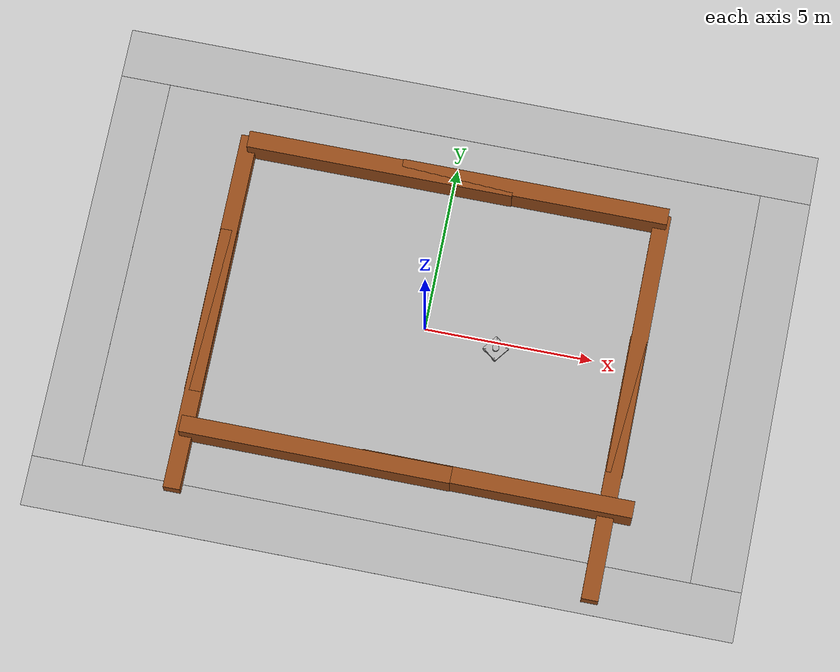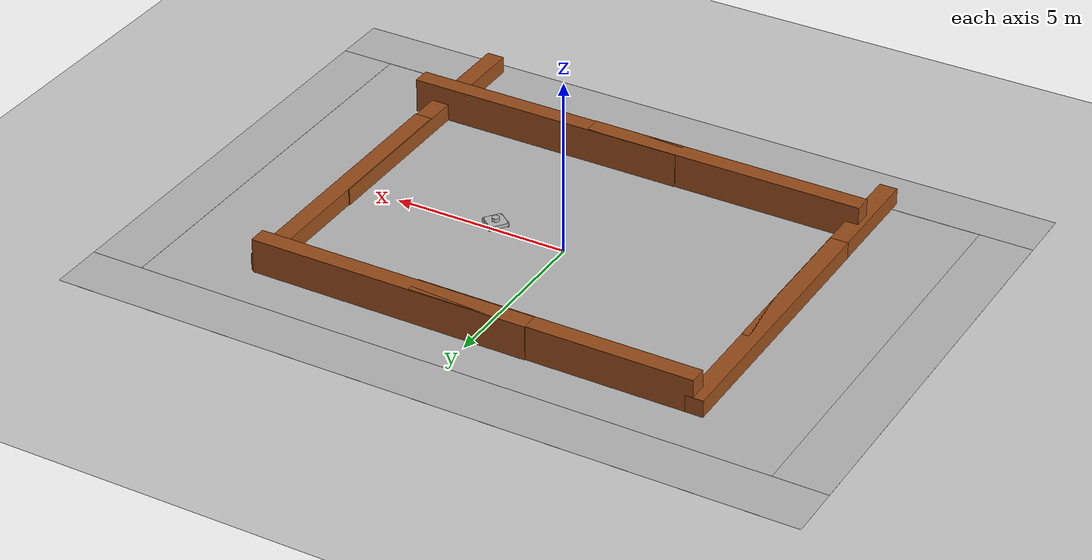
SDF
<sdf version="1.7">
 <world name="RoboCon25">
  <scene><ambient>0.4 0.4 0.4 1</ambient><background>0.7 0.7 0.7 1</background><shadows>0</shadows></scene>
  <spherical_coordinates>
   <surface_model>EARTH_WGS84</surface_model>
   <latitude_deg>0</latitude_deg>
   <longitude_deg>0</longitude_deg>
   <elevation>0</elevation>
   <heading_deg>0</heading_deg>
  </spherical_coordinates>
  <light name="sun" type="directional">
   <cast_shadows>0</cast_shadows>
   <pose>0 0 10 0 -0 0</pose>
   <diffuse>0.8 0.8 0.8 1</diffuse>
   <specular>0.2 0.2 0.2 1</specular>
   <attenuation>
    <range>1000</range>
    <constant>0.9</constant>
    <linear>0.01</linear>
    <quadratic>0.001</quadratic>
   </attenuation>
   <direction>-0.5 0.1 -0.9</direction>
   <spot><inner_angle>0</inner_angle><outer_angle>0</outer_angle><falloff>0</falloff></spot>
  </light>
  <physics type="ode">
   <max_step_size>0.015</max_step_size>
   <real_time_update_rate>67</real_time_update_rate>
   <real_time_factor>1</real_time_factor>
  </physics>
  <model name="ground_plane">
   <static>1</static>
   <link name="link">
    <collision name="collision">
     <geometry><plane><normal>0 0 1</normal><size>100 100</size></plane></geometry>
     <surface><friction><ode><mu>100</mu><mu2>50</mu2></ode></friction></surface>
    </collision>
    <visual name="visual">
     <cast_shadows>0</cast_shadows>
     <geometry><plane><normal>0 0 1</normal><size>100 100</size></plane></geometry>
     <material>
      <script><uri>file://media/materials/scripts/gazebo.material</uri><name>Gazebo/Grey</name></script>
     </material>
    </visual>
    <velocity_decay><linear>0</linear><angular>0</angular></velocity_decay>
   </link>
  </model>
  <model name="field">
   <static>1</static>
   <link name="chassis">
    <pose>0 0 0.01 0 -0 0</pose>
    <collision name="collision">
     <geometry><plane><normal>0 0 1</normal><size>18 12</size></plane></geometry>
     <surface><friction><ode><mu>100</mu><mu2>50</mu2></ode></friction></surface>
    </collision>
    <visual name="carpet">
     <cast_shadows>0</cast_shadows>
     <geometry><plane><normal>0 0 1</normal><size>18 12</size></plane></geometry>
     <material>
      <script>
       <uri>file://materials/scripts/</uri>
       <uri>file://materials/textures/</uri>
       <name>RoboCon/Carpet</name>
      </script>
     </material>
    </visual>
    <visual name="base1">
     <pose>0 6.75 0.01 0 -0 0</pose>
     <cast_shadows>0</cast_shadows>
     <geometry><plane><normal>0 0 1</normal><size>21 1.5</size></plane></geometry>
     <material>
      <script>
       <uri>file://materials/scripts/</uri>
       <uri>file://materials/textures/</uri>
       <name>RoboCon/FieldBorder</name>
      </script>
     </material>
    </visual>
    <visual name="base2">
     <pose>0 -6.75 0.01 0 -0 0</pose>
     <cast_shadows>0</cast_shadows>
     <geometry><plane><normal>0 0 1</normal><size>21 1.5</size></plane></geometry>
     <material>
      <script>
       <uri>file://materials/scripts/</uri>
       <uri>file://materials/textures/</uri>
       <name>RoboCon/FieldBorder</name>
      </script>
     </material>
    </visual>
    <visual name="base3">
     <pose>9.75 0 0.01 0 -0 0</pose>
     <cast_shadows>0</cast_shadows>
     <geometry><plane><normal>0 0 1</normal><size>1.5 12</size></plane></geometry>
     <material>
      <script>
       <uri>file://materials/scripts/</uri>
       <uri>file://materials/textures/</uri>
       <name>RoboCon/FieldBorder</name>
      </script>
     </material>
    </visual>
    <visual name="base4">
     <pose>-9.75 0 0.01 0 -0 0</pose>
     <cast_shadows>0</cast_shadows>
     <geometry><plane><normal>0 0 1</normal><size>1.5 12</size></plane></geometry>
     <material>
      <script>
       <uri>file://materials/scripts/</uri>
       <uri>file://materials/textures/</uri>
       <name>RoboCon/FieldBorder</name>
      </script>
     </material>
    </visual>
   </link>
  </model>
  <gravity>0 0 -9.8</gravity>
  <magnetic_field>6e-06 2.3e-05 -4.2e-05</magnetic_field>
  <atmosphere type="adiabatic"/>
  <model name="rc_baseplate">
   <link name="base_footprint">
    <inertial>
     <mass>20</mass>
     <inertia><ixx>4.00538</ixx><ixy>0</ixy><ixz>0</ixz><iyy>4.00538</iyy><iyz>0</iyz><izz>0.51076</izz></inertia>
    </inertial>
    <collision name="base_footprint_fixed_joint_lump__base_link_collision">
     <geometry><box><size>0.53 0.532 0.1</size></box></geometry>
    </collision>
    <collision name="base_footprint_fixed_joint_lump__wheel_lb_collision_1">
     <pose>-0.25 -0.195 -0.025 3.14159 1.57079 3.14159</pose>
     <geometry><cylinder><length>0.0409</length><radius>0.077</radius></cylinder></geometry>
    </collision>
    <collision name="base_footprint_fixed_joint_lump__wheel_lf_collision_2">
     <pose>-0.25 0.195 -0.025 3.14159 1.57079 3.14159</pose>
     <geometry><cylinder><length>0.0409</length><radius>0.077</radius></cylinder></geometry>
    </collision>
    <collision name="base_footprint_fixed_joint_lump__wheel_rb_collision_3">
     <pose>0.25 -0.195 -0.025 3.14159 -1.57079 3.14159</pose>
     <geometry><cylinder><length>0.0409</length><radius>0.077</radius></cylinder></geometry>
    </collision>
    <collision name="base_footprint_fixed_joint_lump__wheel_rf_collision_4">
     <pose>0.25 0.195 -0.025 3.14159 -1.57079 3.14159</pose>
     <geometry><cylinder><length>0.0409</length><radius>0.077</radius></cylinder></geometry>
    </collision>
    <visual name="base_footprint_visual"><geometry><box><size>0.05 0.05 0.001</size></box></geometry></visual>
    <visual name="base_footprint_fixed_joint_lump__base_link_visual_1">
     <geometry><box><size>0.53 0.532 0.1</size></box></geometry>
    </visual>
    <visual name="base_footprint_fixed_joint_lump__wheel_lb_visual_2">
     <pose>-0.25 -0.195 -0.025 3.14159 1.57079 3.14159</pose>
     <geometry><cylinder><length>0.0409</length><radius>0.077</radius></cylinder></geometry>
    </visual>
    <visual name="base_footprint_fixed_joint_lump__wheel_lf_visual_3">
     <pose>-0.25 0.195 -0.025 3.14159 1.57079 3.14159</pose>
     <geometry><cylinder><length>0.0409</length><radius>0.077</radius></cylinder></geometry>
    </visual>
    <visual name="base_footprint_fixed_joint_lump__wheel_rb_visual_4">
     <pose>0.25 -0.195 -0.025 3.14159 -1.57079 3.14159</pose>
     <geometry><cylinder><length>0.0409</length><radius>0.077</radius></cylinder></geometry>
    </visual>
    <visual name="base_footprint_fixed_joint_lump__wheel_rf_visual_5">
     <pose>0.25 0.195 -0.025 3.14159 -1.57079 3.14159</pose>
     <geometry><cylinder><length>0.0409</length><radius>0.077</radius></cylinder></geometry>
    </visual>
    <visual name="base_footprint_fixed_joint_lump__laser_visual_6">
     <pose>0 0 0.1 0 -0 0</pose>
     <geometry><cylinder><length>0.1</length><radius>0.1</radius></cylinder></geometry>
    </visual>
    <sensor name="head_hokuyo_sensor" type="ray">
     <visualize>0</visualize>
     <update_rate>10</update_rate>
     <ray>
      <scan>
       <horizontal>
        <samples>1081</samples>
        <resolution>1</resolution>
        <min_angle>-3.14159</min_angle>
        <max_angle>3.14159</max_angle>
       </horizontal>
       <vertical><samples>1</samples><min_angle>0</min_angle><max_angle>0</max_angle></vertical>
      </scan>
      <range><min>0.03</min><max>100</max><resolution>0.01</resolution></range>
      <noise><type>gaussian</type><mean>0</mean><stddev>0.01</stddev></noise>
     </ray>
     <plugin name="gazebo_ros_hokuyo_controller" filename="libgazebo_ros_laser.so">
      <topicName>scan</topicName>
      <frameName>laser</frameName>
      <robotNamespace>/</robotNamespace>
     </plugin>
     <pose>0 0 0.2 0 -0 0</pose>
    </sensor>
   </link>
   <plugin name="base_controller" filename="libgazebo_ros_planar_move.so">
    <commandTopic>cmd_vel</commandTopic>
    <cmdTimeout>-1.0</cmdTimeout>
    <odometryTopic>odom</odometryTopic>
    <odometryFrame>odom</odometryFrame>
    <odometryRate>20.0</odometryRate>
    <robotBaseFrame>base_footprint</robotBaseFrame>
    <robotNamespace>/</robotNamespace>
   </plugin>
   <frame name="base_to_wheel_lb" attached_to="base_link"><pose>-0.25 -0.195 -0.025 0 1.57075 0</pose></frame>
   <frame name="wheel_lb" attached_to="base_to_wheel_lb"/>
   <frame name="base_to_wheel_lf" attached_to="base_link"><pose>-0.25 0.195 -0.025 0 1.57075 0</pose></frame>
   <frame name="wheel_lf" attached_to="base_to_wheel_lf"/>
   <frame name="base_to_wheel_rb" attached_to="base_link"><pose>0.25 -0.195 -0.025 0 -1.57075 0</pose></frame>
   <frame name="wheel_rb" attached_to="base_to_wheel_rb"/>
   <frame name="base_to_wheel_rf" attached_to="base_link"><pose>0.25 0.195 -0.025 0 -1.57075 0</pose></frame>
   <frame name="wheel_rf" attached_to="base_to_wheel_rf"/>
   <frame name="laser_joint" attached_to="base_link"><pose>0 0 0.1 0 -0 0</pose></frame>
   <frame name="laser" attached_to="laser_joint"/>
   <frame name="base_joint" attached_to="base_footprint"/>
   <frame name="base_link" attached_to="base_joint"/>
   <pose>2.16196 -0.221172 0.109795 0 -0 0.919829</pose>
  </model>
  <model name="fence_long">
   <static>1</static>
   <link name="fence_long_2">
    <visual name="visual_long_2">
     <geometry><box><size>0.5 8 1</size></box></geometry>
     <material><ambient>0.6 0.3 0.1 1</ambient></material>
    </visual>
    <collision name="collision_long_2"><geometry><box><size>0.5 8 1</size></box></geometry></collision>
    <pose>-7.25 0 0.5 0 -0 1.5708</pose>
   </link>
   <pose>5.02296 4.46493 0 0 -0 0</pose>
  </model>
  <model name="fence_long_0">
   <static>1</static>
   <link name="fence_long_2">
    <visual name="visual_long_2">
     <geometry><box><size>0.5 8 1</size></box></geometry>
     <material><ambient>0.6 0.3 0.1 1</ambient></material>
    </visual>
    <collision name="collision_long_2"><geometry><box><size>0.5 8 1</size></box></geometry></collision>
    <pose>-7.25 0 0.5 0 -0 1.5708</pose>
   </link>
   <pose>9.66578 4.48776 0 0 -0 0</pose>
  </model>
  <model name="fence_short">
   <static>1</static>
   <link name="fence_short_2">
    <visual name="visual_short_2">
     <geometry><box><size>0.5 8 1</size></box></geometry>
     <material><ambient>0.6 0.3 0.1 1</ambient></material>
    </visual>
    <collision name="collision_short_2"><geometry><box><size>0.5 8 1</size></box></geometry></collision>
   </link>
   <pose>-6.25858 0.716513 0 0 -0 0</pose>
  </model>
  <model name="fence_short_0">
   <static>1</static>
   <link name="fence_short_2">
    <visual name="visual_short_2">
     <geometry><box><size>0.5 8 1</size></box></geometry>
     <material><ambient>0.6 0.3 0.1 1</ambient></material>
    </visual>
    <collision name="collision_short_2"><geometry><box><size>0.5 8 1</size></box></geometry></collision>
   </link>
   <pose>-6.24877 -2.27381 0 0 -0 0</pose>
  </model>
  <model name="fence_long_1">
   <static>1</static>
   <link name="fence_long_2">
    <visual name="visual_long_2">
     <geometry><box><size>0.5 8 1</size></box></geometry>
     <material><ambient>0.6 0.3 0.1 1</ambient></material>
    </visual>
    <collision name="collision_long_2"><geometry><box><size>0.5 8 1</size></box></geometry></collision>
    <pose>-7.25 0 0.5 0 -0 1.5708</pose>
   </link>
   <pose>4.8977 -4.43696 0 0 -0 0</pose>
  </model>
  <model name="fence_long_2">
   <static>1</static>
   <link name="fence_long_2">
    <visual name="visual_long_2">
     <geometry><box><size>0.5 8 1</size></box></geometry>
     <material><ambient>0.6 0.3 0.1 1</ambient></material>
    </visual>
    <collision name="collision_long_2"><geometry><box><size>0.5 8 1</size></box></geometry></collision>
    <pose>-7.25 0 0.5 0 -0 1.5708</pose>
   </link>
   <pose>10.2454 -4.42056 0 0 -0 0</pose>
  </model>
  <model name="fence_short_1">
   <static>1</static>
   <link name="fence_short_2">
    <visual name="visual_short_2">
     <geometry><box><size>0.5 8 1</size></box></geometry>
     <material><ambient>0.6 0.3 0.1 1</ambient></material>
    </visual>
    <collision name="collision_short_2"><geometry><box><size>0.5 8 1</size></box></geometry></collision>
   </link>
   <pose>6.26031 0.672322 0 0 -0 0</pose>
  </model>
  <model name="fence_short_2">
   <static>1</static>
   <link name="fence_short_2">
    <visual name="visual_short_2">
     <geometry><box><size>0.5 8 1</size></box></geometry>
     <material><ambient>0.6 0.3 0.1 1</ambient></material>
    </visual>
    <collision name="collision_short_2"><geometry><box><size>0.5 8 1</size></box></geometry></collision>
   </link>
   <pose>6.23707 -3.15531 0 0 -0 0</pose>
  </model>
 </world>
</sdf>
